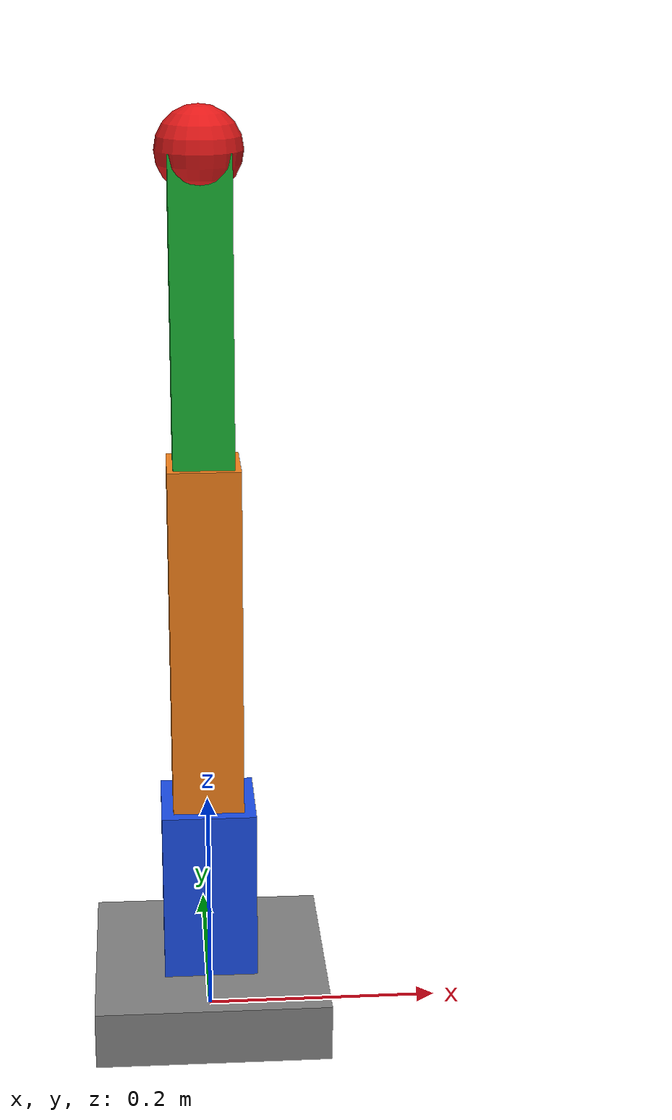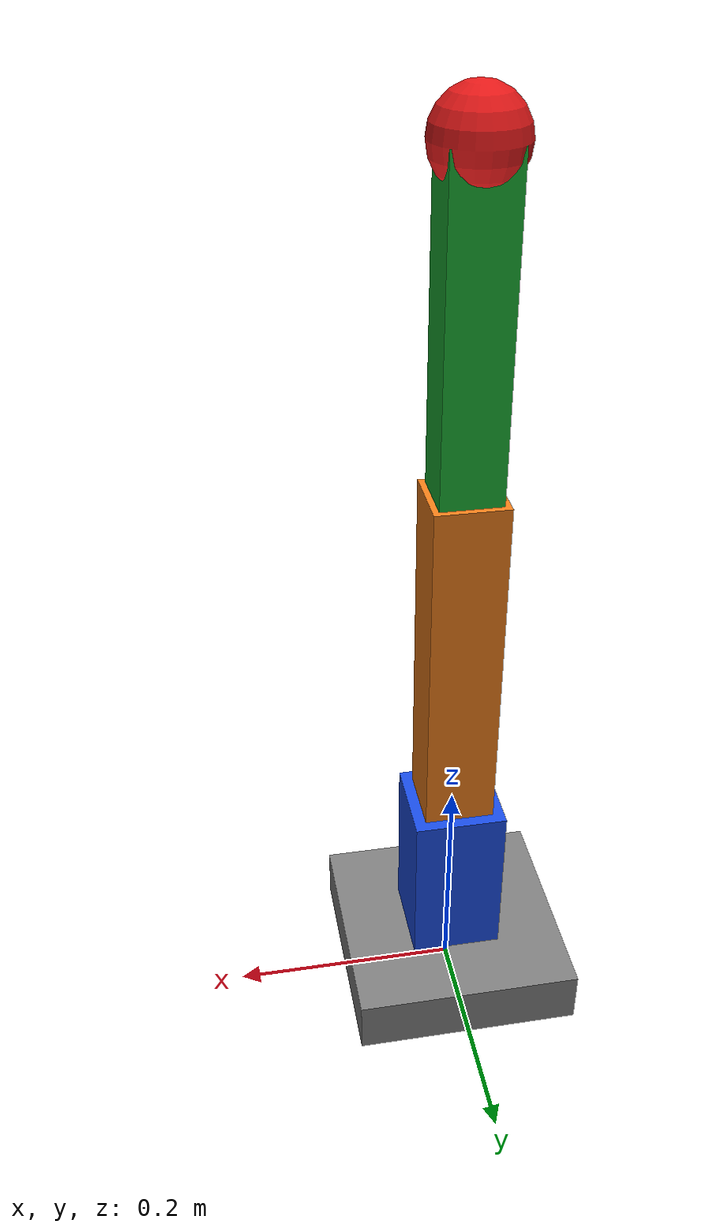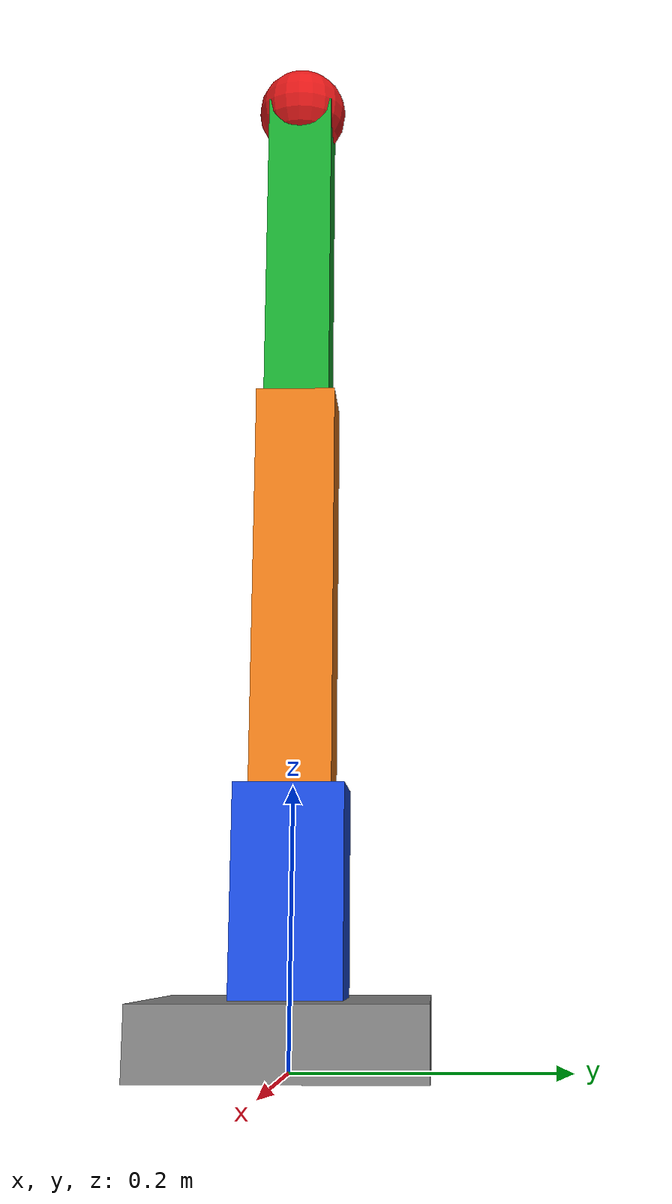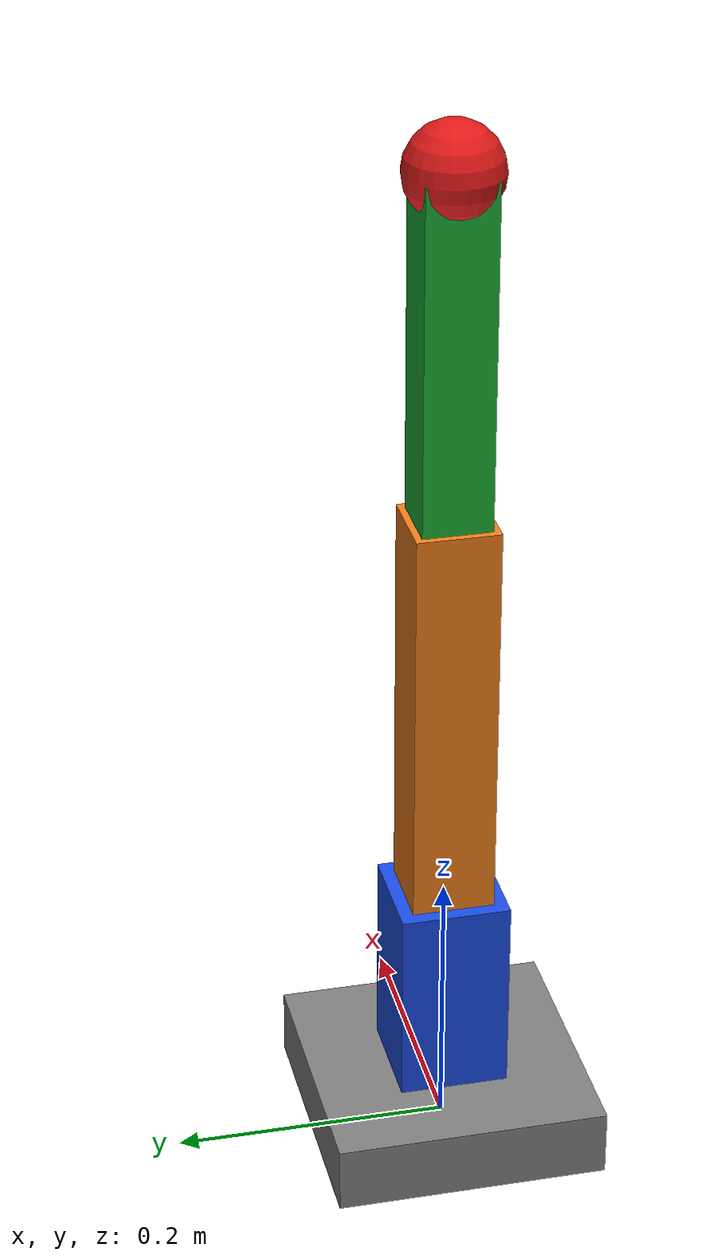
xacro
<?xml version="1.0"?>
<robot name="vla_arm" xmlns:xacro="http://www.ros.org/wiki/xacro">

  <xacro:arg name="use_gz_control" default="false"/>

  <!-- materials -->
  <material name="grey">   <color rgba="0.5 0.5 0.5 1"/></material>
  <material name="blue">   <color rgba="0.1 0.3 0.9 1"/></material>
  <material name="orange"> <color rgba="0.95 0.5 0.1 1"/></material>
  <material name="green">  <color rgba="0.1 0.7 0.2 1"/></material>
  <material name="red">    <color rgba="0.9 0.1 0.1 1"/></material>

  <!-- a small box-inertia helper -->
  <xacro:macro name="box_inertial" params="mass x y z">
    <inertial>
      <mass value="${mass}"/>
      <inertia ixx="${mass*(y*y+z*z)/12.0}" iyy="${mass*(x*x+z*z)/12.0}"
               izz="${mass*(x*x+y*y)/12.0}" ixy="0" ixz="0" iyz="0"/>
    </inertial>
  </xacro:macro>

  <!-- base: a flat plinth the arm stands on -->
  <link name="base_link">
    <visual>
      <origin xyz="0 0 0.025"/>
      <geometry><box size="0.20 0.20 0.05"/></geometry>
      <material name="grey"/>
    </visual>
    <collision>
      <origin xyz="0 0 0.025"/>
      <geometry><box size="0.20 0.20 0.05"/></geometry>
    </collision>
    <xacro:box_inertial mass="2.0" x="0.2" y="0.2" z="0.05"/>
  </link>

  <!-- joint1: base yaw (theta 1) -->
  <joint name="joint1" type="revolute">
    <parent link="base_link"/>
    <child link="link1"/>
    <origin xyz="0 0 0.05"/>
    <axis xyz="0 0 1"/>
    <limit lower="-3.14" upper="3.14" effort="20" velocity="2.0"/>
  </joint>
  <link name="link1">
    <visual>
      <origin xyz="0 0 0.075"/>
      <geometry><box size="0.08 0.08 0.15"/></geometry>
      <material name="blue"/>
    </visual>
    <collision>
      <origin xyz="0 0 0.075"/>
      <geometry><box size="0.08 0.08 0.15"/></geometry>
    </collision>
    <xacro:box_inertial mass="0.6" x="0.08" y="0.08" z="0.15"/>
  </link>

  <!-- joint2: shoulder pitch (theta 2) -->
  <joint name="joint2" type="revolute">
    <parent link="link1"/>
    <child link="link2"/>
    <origin xyz="0 0 0.15"/>
    <axis xyz="0 1 0"/>
    <limit lower="-1.5" upper="1.5" effort="20" velocity="2.0"/>
  </joint>
  <link name="link2">
    <visual>
      <origin xyz="0 0 0.15"/>
      <geometry><box size="0.06 0.06 0.30"/></geometry>
      <material name="orange"/>
    </visual>
    <collision>
      <origin xyz="0 0 0.15"/>
      <geometry><box size="0.06 0.06 0.30"/></geometry>
    </collision>
    <xacro:box_inertial mass="0.5" x="0.06" y="0.06" z="0.30"/>
  </link>

  <!-- joint3: elbow pitch (theta 3) -->
  <joint name="joint3" type="revolute">
    <parent link="link2"/>
    <child link="link3"/>
    <origin xyz="0 0 0.30"/>
    <axis xyz="0 1 0"/>
    <limit lower="-2.5" upper="2.5" effort="20" velocity="2.0"/>
  </joint>
  <link name="link3">
    <visual>
      <origin xyz="0 0 0.125"/>
      <geometry><box size="0.05 0.05 0.25"/></geometry>
      <material name="green"/>
    </visual>
    <collision>
      <origin xyz="0 0 0.125"/>
      <geometry><box size="0.05 0.05 0.25"/></geometry>
    </collision>
    <xacro:box_inertial mass="0.4" x="0.05" y="0.05" z="0.25"/>
  </link>

  <!-- tip: the "hand" marker at the end of the forearm -->
  <joint name="tip_joint" type="fixed">
    <parent link="link3"/>
    <child link="tip_link"/>
    <origin xyz="0 0 0.25"/>
  </joint>
  <link name="tip_link">
    <visual>
      <geometry><sphere radius="0.035"/></geometry>
      <material name="red"/>
    </visual>
    <xacro:box_inertial mass="0.1" x="0.05" y="0.05" z="0.05"/>
  </link>

  <!-- ros2_control + gz_ros2_control (Gazebo target only) -->
  <xacro:if value="$(arg use_gz_control)">
    <xacro:include filename="$(find vla_arm_description)/urdf/arm.ros2_control.xacro"/>
  </xacro:if>

</robot>
